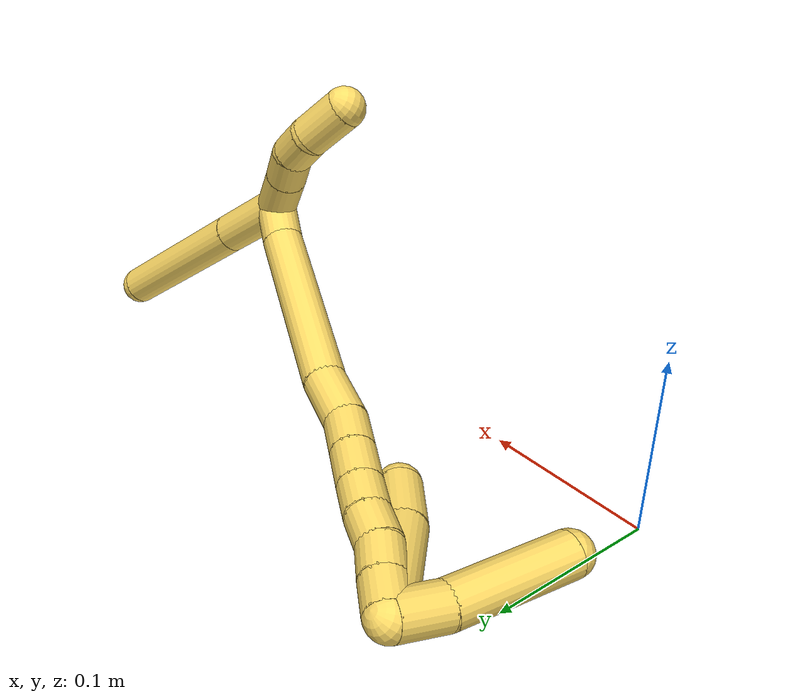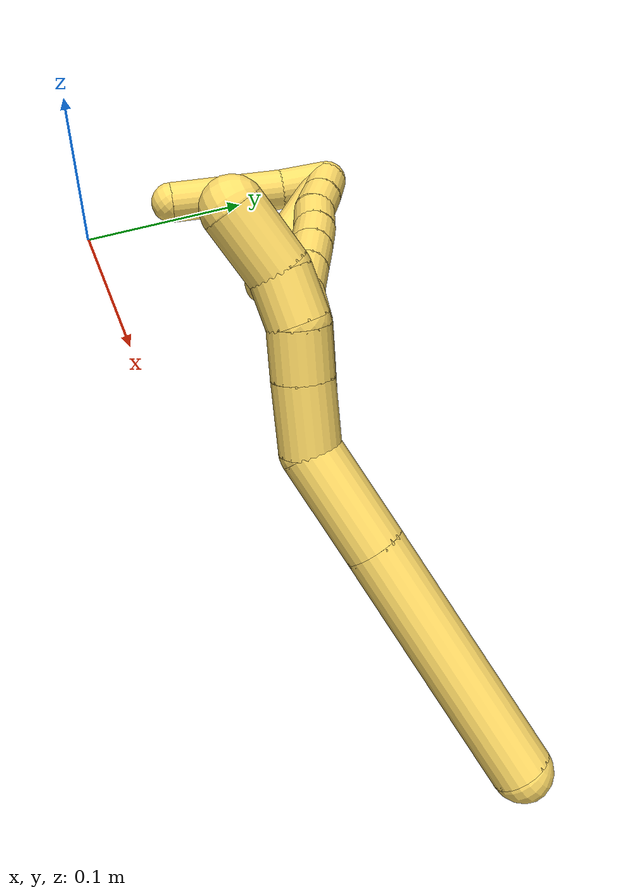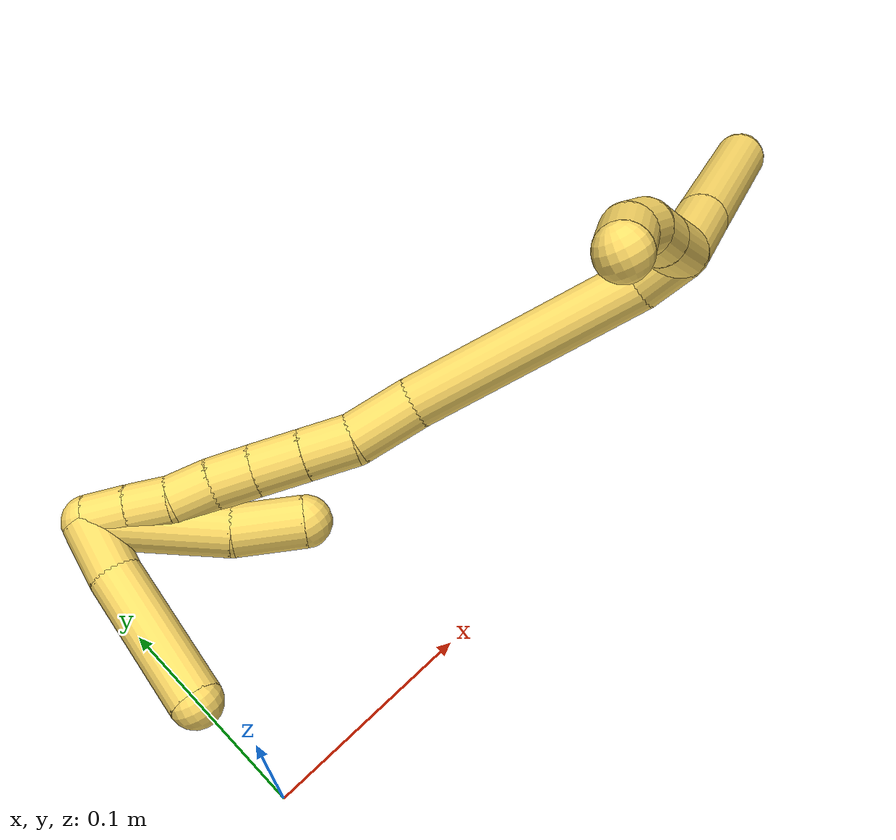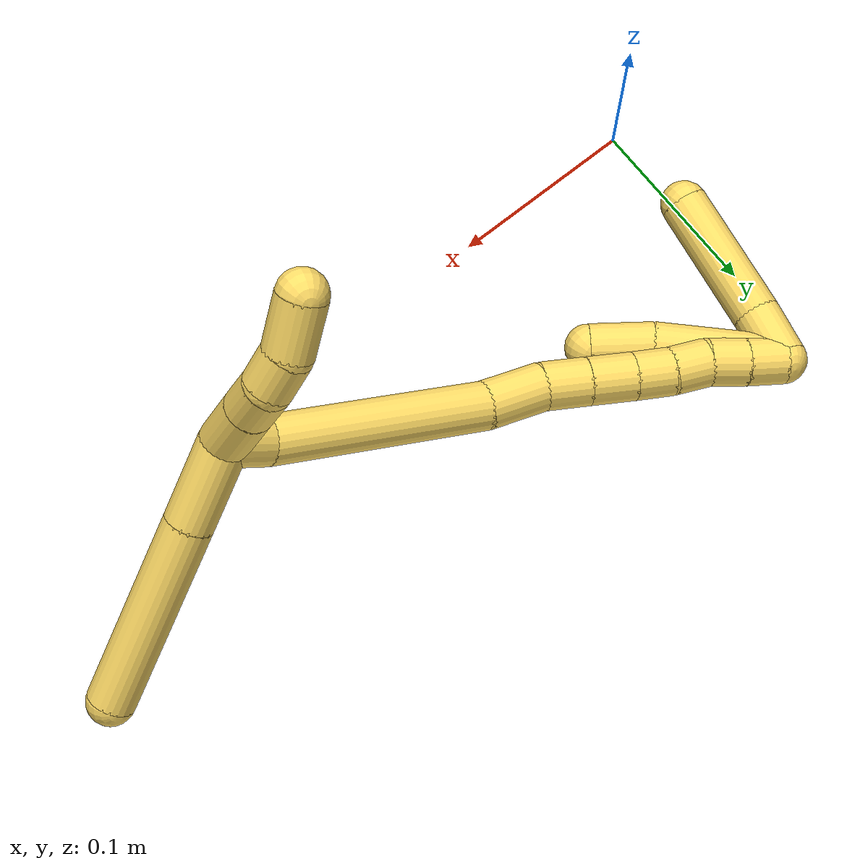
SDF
<sdf version="1.7">
 <world name="default">
  <model name="photoneo_s_sensor">
   <static>1</static>
   <pose>0 0 2 1.57079 1.57079 3.14159</pose>
   <link name="link">
    <inertial><mass>0.1</mass></inertial>
    <sensor name="sensor" type="depth">
     <update_rate>30</update_rate>
     <camera>
      <horizontal_fov>1.22</horizontal_fov>
      <image><width>1920</width><height>1200</height><format>B8G8R8</format></image>
      <clip><near>0.1</near><far>4</far></clip>
      <depth_camera><output>points</output></depth_camera>
     </camera>
     <plugin name="camera_plugin" filename="libgazebo_ros_depth_camera.so">
      <baseline>0.2</baseline>
      <alwaysOn>1</alwaysOn>
      <updateRate>0.0</updateRate>
      <cameraName>camera_ir</cameraName>
      <imageTopicName>/camera/color/image_raw</imageTopicName>
      <cameraInfoTopicName>/camera/color/camera_info</cameraInfoTopicName>
      <depthImageTopicName>/camera/depth/image_raw</depthImageTopicName>
      <depthImageCameraInfoTopicName>/camera/depth/camera_info</depthImageCameraInfoTopicName>
      <pointCloudTopicName>/camera/depth/points</pointCloudTopicName>
      <frameName>fr_optical</frameName>
      <pointCloudCutoff>0.1</pointCloudCutoff>
      <pointCloudCutoffMax>2.0</pointCloudCutoffMax>
      <distortionK1>0</distortionK1>
      <distortionK2>0</distortionK2>
      <distortionK3>0</distortionK3>
      <distortionT1>0</distortionT1>
      <distortionT2>0</distortionT2>
      <CxPrime>0</CxPrime>
      <Cx>0</Cx>
      <Cy>0</Cy>
      <focalLength>0</focalLength>
      <hackBaseline>0</hackBaseline>
     </plugin>
    </sensor>
   </link>
  </model>
  <model name="bin">
   <static>1</static>
   <link name="bottom">
    <collision name="collision-bottom">
     <pose>0 0 -0.01 0 -0 0</pose>
     <geometry><box><size>0.8 0.6 0.02</size></box></geometry>
     <surface>
      <friction><ode><mu>100</mu><mu2>100</mu2></ode></friction>
      <contact><collide_bitmask>65535</collide_bitmask></contact>
     </surface>
    </collision>
   </link>
   <link name="west_wall">
    <collision name="collision-west_wall">
     <pose>-0.41 0 0.1 0 -0 0</pose>
     <geometry><box><size>0.02 0.6 0.2</size></box></geometry>
     <surface>
      <friction><ode><mu>100</mu><mu2>100</mu2></ode></friction>
      <contact><collide_bitmask>65535</collide_bitmask></contact>
     </surface>
    </collision>
   </link>
   <link name="east_wall">
    <collision name="collision-east_wall">
     <pose>0.41 0 0.1 0 -0 0</pose>
     <geometry><box><size>0.02 0.6 0.2</size></box></geometry>
     <surface>
      <friction><ode><mu>100</mu><mu2>100</mu2></ode></friction>
      <contact><collide_bitmask>65535</collide_bitmask></contact>
     </surface>
    </collision>
   </link>
   <link name="south_wall">
    <collision name="collision-south_wall">
     <pose>0 -0.31 0.1 0 -0 0</pose>
     <geometry><box><size>0.8 0.02 0.2</size></box></geometry>
     <surface>
      <friction><ode><mu>100</mu><mu2>100</mu2></ode></friction>
      <contact><collide_bitmask>65535</collide_bitmask></contact>
     </surface>
    </collision>
   </link>
   <link name="north_wall">
    <collision name="collision-north_wall">
     <pose>0 0.31 0.1 0 -0 0</pose>
     <geometry><box><size>0.8 0.02 0.2</size></box></geometry>
     <surface>
      <friction><ode><mu>100</mu><mu2>100</mu2></ode></friction>
      <contact><collide_bitmask>65535</collide_bitmask></contact>
     </surface>
    </collision>
   </link>
  </model>
  <model name="5">
   <static>0</static>
   <link name="5">
    <collision name="collision-cylinder-e_1_2_8">
     <pose>0.015579 0.01635 -0.000684 -1.61264 0.760826 -0.790121</pose>
     <geometry><cylinder><radius>0.0125</radius><length>0.045187</length></cylinder></geometry>
     <surface>
      <friction><ode><mu>1.16</mu><mu2>1.16</mu2><slip1>0</slip1><slip2>0</slip2></ode></friction>
      <contact><ode><kp>1e+06</kp><kd>1</kd><max_vel>0</max_vel><min_depth>0.001</min_depth></ode></contact>
     </surface>
    </collision>
    <visual name="visual-cylinder-e_1_2_8">
     <pose>0.015579 0.01635 -0.000684 -1.61264 0.760826 -0.790121</pose>
     <geometry><cylinder><radius>0.0125</radius><length>0.045187</length></cylinder></geometry>
     <material><ambient>1 0.858824 0.4 1</ambient></material>
    </visual>
    <collision name="collision-cylinder-e_2_8_6">
     <pose>0.06731 0.070593 -0.00323 -1.61988 0.76128 -0.795758</pose>
     <geometry><cylinder><radius>0.0125</radius><length>0.104813</length></cylinder></geometry>
     <surface>
      <friction><ode><mu>1.16</mu><mu2>1.16</mu2><slip1>0</slip1><slip2>0</slip2></ode></friction>
      <contact><ode><kp>1e+06</kp><kd>1</kd><max_vel>0</max_vel><min_depth>0.001</min_depth></ode></contact>
     </surface>
    </collision>
    <visual name="visual-cylinder-e_2_8_6">
     <pose>0.06731 0.070593 -0.00323 -1.61988 0.76128 -0.795758</pose>
     <geometry><cylinder><radius>0.0125</radius><length>0.104813</length></cylinder></geometry>
     <material><ambient>1 0.858824 0.4 1</ambient></material>
    </visual>
    <collision name="collision-cylinder-e_1_2_9">
     <pose>-0.00776 -0.009996 0.007914 0.901083 -0.546775 -0.269635</pose>
     <geometry><cylinder><radius>0.0125</radius><length>0.029851</length></cylinder></geometry>
     <surface>
      <friction><ode><mu>1.16</mu><mu2>1.16</mu2><slip1>0</slip1><slip2>0</slip2></ode></friction>
      <contact><ode><kp>1e+06</kp><kd>1</kd><max_vel>0</max_vel><min_depth>0.001</min_depth></ode></contact>
     </surface>
    </collision>
    <visual name="visual-cylinder-e_1_2_9">
     <pose>-0.00776 -0.009996 0.007914 0.901083 -0.546775 -0.269635</pose>
     <geometry><cylinder><radius>0.0125</radius><length>0.029851</length></cylinder></geometry>
     <material><ambient>1 0.858824 0.4 1</ambient></material>
    </visual>
    <collision name="collision-cylinder-e_2_9_10">
     <pose>-0.02081 -0.026942 0.021623 0.875938 -0.528949 -0.252303</pose>
     <geometry><cylinder><radius>0.0125</radius><length>0.020963</length></cylinder></geometry>
     <surface>
      <friction><ode><mu>1.16</mu><mu2>1.16</mu2><slip1>0</slip1><slip2>0</slip2></ode></friction>
      <contact><ode><kp>1e+06</kp><kd>1</kd><max_vel>0</max_vel><min_depth>0.001</min_depth></ode></contact>
     </surface>
    </collision>
    <visual name="visual-cylinder-e_2_9_10">
     <pose>-0.02081 -0.026942 0.021623 0.875938 -0.528949 -0.252303</pose>
     <geometry><cylinder><radius>0.0125</radius><length>0.020963</length></cylinder></geometry>
     <material><ambient>1 0.858824 0.4 1</ambient></material>
    </visual>
    <collision name="collision-cylinder-e_3_10_11">
     <pose>-0.032897 -0.040905 0.030129 1.20176 -0.735147 -0.516112</pose>
     <geometry><cylinder><radius>0.0125</radius><length>0.020272</length></cylinder></geometry>
     <surface>
      <friction><ode><mu>1.16</mu><mu2>1.16</mu2><slip1>0</slip1><slip2>0</slip2></ode></friction>
      <contact><ode><kp>1e+06</kp><kd>1</kd><max_vel>0</max_vel><min_depth>0.001</min_depth></ode></contact>
     </surface>
    </collision>
    <visual name="visual-cylinder-e_3_10_11">
     <pose>-0.032897 -0.040905 0.030129 1.20176 -0.735147 -0.516112</pose>
     <geometry><cylinder><radius>0.0125</radius><length>0.020272</length></cylinder></geometry>
     <material><ambient>1 0.858824 0.4 1</ambient></material>
    </visual>
    <collision name="collision-cylinder-e_4_11_5">
     <pose>-0.047645 -0.059983 0.033321 1.53096 -0.582235 -0.560685</pose>
     <geometry><cylinder><radius>0.0125</radius><length>0.028914</length></cylinder></geometry>
     <surface>
      <friction><ode><mu>1.16</mu><mu2>1.16</mu2><slip1>0</slip1><slip2>0</slip2></ode></friction>
      <contact><ode><kp>1e+06</kp><kd>1</kd><max_vel>0</max_vel><min_depth>0.001</min_depth></ode></contact>
     </surface>
    </collision>
    <visual name="visual-cylinder-e_4_11_5">
     <pose>-0.047645 -0.059983 0.033321 1.53096 -0.582235 -0.560685</pose>
     <geometry><cylinder><radius>0.0125</radius><length>0.028914</length></cylinder></geometry>
     <material><ambient>1 0.858824 0.4 1</ambient></material>
    </visual>
    <collision name="collision-cylinder-e_1_2_12">
     <pose>-0.009268 0.007295 -0.003183 -1.98219 -0.861246 1.22361</pose>
     <geometry><cylinder><radius>0.0125</radius><length>0.024432</length></cylinder></geometry>
     <surface>
      <friction><ode><mu>1.16</mu><mu2>1.16</mu2><slip1>0</slip1><slip2>0</slip2></ode></friction>
      <contact><ode><kp>1e+06</kp><kd>1</kd><max_vel>0</max_vel><min_depth>0.001</min_depth></ode></contact>
     </surface>
    </collision>
    <visual name="visual-cylinder-e_1_2_12">
     <pose>-0.009268 0.007295 -0.003183 -1.98219 -0.861246 1.22361</pose>
     <geometry><cylinder><radius>0.0125</radius><length>0.024432</length></cylinder></geometry>
     <material><ambient>1 0.858824 0.4 1</ambient></material>
    </visual>
    <collision name="collision-cylinder-e_2_12_13">
     <pose>-0.071365 0.037115 -0.009261 -1.69866 -1.16479 1.28533</pose>
     <geometry><cylinder><radius>0.0125</radius><length>0.115009</length></cylinder></geometry>
     <surface>
      <friction><ode><mu>1.16</mu><mu2>1.16</mu2><slip1>0</slip1><slip2>0</slip2></ode></friction>
      <contact><ode><kp>1e+06</kp><kd>1</kd><max_vel>0</max_vel><min_depth>0.001</min_depth></ode></contact>
     </surface>
    </collision>
    <visual name="visual-cylinder-e_2_12_13">
     <pose>-0.071365 0.037115 -0.009261 -1.69866 -1.16479 1.28533</pose>
     <geometry><cylinder><radius>0.0125</radius><length>0.115009</length></cylinder></geometry>
     <material><ambient>1 0.858824 0.4 1</ambient></material>
    </visual>
    <collision name="collision-cylinder-e_3_13_14">
     <pose>-0.139776 0.063337 -0.013185 -1.84193 -1.32937 1.6015</pose>
     <geometry><cylinder><radius>0.0125</radius><length>0.032092</length></cylinder></geometry>
     <surface>
      <friction><ode><mu>1.16</mu><mu2>1.16</mu2><slip1>0</slip1><slip2>0</slip2></ode></friction>
      <contact><ode><kp>1e+06</kp><kd>1</kd><max_vel>0</max_vel><min_depth>0.001</min_depth></ode></contact>
     </surface>
    </collision>
    <visual name="visual-cylinder-e_3_13_14">
     <pose>-0.139776 0.063337 -0.013185 -1.84193 -1.32937 1.6015</pose>
     <geometry><cylinder><radius>0.0125</radius><length>0.032092</length></cylinder></geometry>
     <material><ambient>1 0.858824 0.4 1</ambient></material>
    </visual>
    <collision name="collision-cylinder-e_4_14_15">
     <pose>-0.166564 0.070765 -0.012272 -1.09145 -1.21174 0.79643</pose>
     <geometry><cylinder><radius>0.0125</radius><length>0.023942</length></cylinder></geometry>
     <surface>
      <friction><ode><mu>1.16</mu><mu2>1.16</mu2><slip1>0</slip1><slip2>0</slip2></ode></friction>
      <contact><ode><kp>1e+06</kp><kd>1</kd><max_vel>0</max_vel><min_depth>0.001</min_depth></ode></contact>
     </surface>
    </collision>
    <visual name="visual-cylinder-e_4_14_15">
     <pose>-0.166564 0.070765 -0.012272 -1.09145 -1.21174 0.79643</pose>
     <geometry><cylinder><radius>0.0125</radius><length>0.023942</length></cylinder></geometry>
     <material><ambient>1 0.858824 0.4 1</ambient></material>
    </visual>
    <collision name="collision-cylinder-e_5_15_16">
     <pose>-0.188924 0.078307 -0.008423 -1.10621 -1.20586 0.803805</pose>
     <geometry><cylinder><radius>0.0125</radius><length>0.023875</length></cylinder></geometry>
     <surface>
      <friction><ode><mu>1.16</mu><mu2>1.16</mu2><slip1>0</slip1><slip2>0</slip2></ode></friction>
      <contact><ode><kp>1e+06</kp><kd>1</kd><max_vel>0</max_vel><min_depth>0.001</min_depth></ode></contact>
     </surface>
    </collision>
    <visual name="visual-cylinder-e_5_15_16">
     <pose>-0.188924 0.078307 -0.008423 -1.10621 -1.20586 0.803805</pose>
     <geometry><cylinder><radius>0.0125</radius><length>0.023875</length></cylinder></geometry>
     <material><ambient>1 0.858824 0.4 1</ambient></material>
    </visual>
    <collision name="collision-cylinder-e_6_16_17">
     <pose>-0.209582 0.085143 -0.004939 -1.09116 -1.22612 0.807194</pose>
     <geometry><cylinder><radius>0.0125</radius><length>0.020201</length></cylinder></geometry>
     <surface>
      <friction><ode><mu>1.16</mu><mu2>1.16</mu2><slip1>0</slip1><slip2>0</slip2></ode></friction>
      <contact><ode><kp>1e+06</kp><kd>1</kd><max_vel>0</max_vel><min_depth>0.001</min_depth></ode></contact>
     </surface>
    </collision>
    <visual name="visual-cylinder-e_6_16_17">
     <pose>-0.209582 0.085143 -0.004939 -1.09116 -1.22612 0.807194</pose>
     <geometry><cylinder><radius>0.0125</radius><length>0.020201</length></cylinder></geometry>
     <material><ambient>1 0.858824 0.4 1</ambient></material>
    </visual>
    <collision name="collision-cylinder-e_7_17_18">
     <pose>-0.2288 0.090435 -0.002601 -1.24553 -1.32958 1.0253</pose>
     <geometry><cylinder><radius>0.0125</radius><length>0.020004</length></cylinder></geometry>
     <surface>
      <friction><ode><mu>1.16</mu><mu2>1.16</mu2><slip1>0</slip1><slip2>0</slip2></ode></friction>
      <contact><ode><kp>1e+06</kp><kd>1</kd><max_vel>0</max_vel><min_depth>0.001</min_depth></ode></contact>
     </surface>
    </collision>
    <visual name="visual-cylinder-e_7_17_18">
     <pose>-0.2288 0.090435 -0.002601 -1.24553 -1.32958 1.0253</pose>
     <geometry><cylinder><radius>0.0125</radius><length>0.020004</length></cylinder></geometry>
     <material><ambient>1 0.858824 0.4 1</ambient></material>
    </visual>
    <collision name="collision-cylinder-e_8_18_19">
     <pose>-0.247575 0.096524 0.000519 -1.01864 -1.11062 0.667095</pose>
     <geometry><cylinder><radius>0.0125</radius><length>0.020229</length></cylinder></geometry>
     <surface>
      <friction><ode><mu>1.16</mu><mu2>1.16</mu2><slip1>0</slip1><slip2>0</slip2></ode></friction>
      <contact><ode><kp>1e+06</kp><kd>1</kd><max_vel>0</max_vel><min_depth>0.001</min_depth></ode></contact>
     </surface>
    </collision>
    <visual name="visual-cylinder-e_8_18_19">
     <pose>-0.247575 0.096524 0.000519 -1.01864 -1.11062 0.667095</pose>
     <geometry><cylinder><radius>0.0125</radius><length>0.020229</length></cylinder></geometry>
     <material><ambient>1 0.858824 0.4 1</ambient></material>
    </visual>
    <collision name="collision-cylinder-e_9_19_1">
     <pose>-0.265895 0.103795 0.005014 -1.0153 -1.15777 0.697424</pose>
     <geometry><cylinder><radius>0.0125</radius><length>0.020215</length></cylinder></geometry>
     <surface>
      <friction><ode><mu>1.16</mu><mu2>1.16</mu2><slip1>0</slip1><slip2>0</slip2></ode></friction>
      <contact><ode><kp>1e+06</kp><kd>1</kd><max_vel>0</max_vel><min_depth>0.001</min_depth></ode></contact>
     </surface>
    </collision>
    <visual name="visual-cylinder-e_9_19_1">
     <pose>-0.265895 0.103795 0.005014 -1.0153 -1.15777 0.697424</pose>
     <geometry><cylinder><radius>0.0125</radius><length>0.020215</length></cylinder></geometry>
     <material><ambient>1 0.858824 0.4 1</ambient></material>
    </visual>
    <collision name="collision-cylinder-e_1_1_20">
     <pose>-0.248685 0.096793 -0.009823 2.58987 0.925261 2.10908</pose>
     <geometry><cylinder><radius>0.0125</radius><length>0.066269</length></cylinder></geometry>
     <surface>
      <friction><ode><mu>1.16</mu><mu2>1.16</mu2><slip1>0</slip1><slip2>0</slip2></ode></friction>
      <contact><ode><kp>1e+06</kp><kd>1</kd><max_vel>0</max_vel><min_depth>0.001</min_depth></ode></contact>
     </surface>
    </collision>
    <visual name="visual-cylinder-e_1_1_20">
     <pose>-0.248685 0.096793 -0.009823 2.58987 0.925261 2.10908</pose>
     <geometry><cylinder><radius>0.0125</radius><length>0.066269</length></cylinder></geometry>
     <material><ambient>1 0.858824 0.4 1</ambient></material>
    </visual>
    <collision name="collision-cylinder-e_2_20_4">
     <pose>-0.207126 0.081567 -0.032616 2.45395 1.10816 2.09241</pose>
     <geometry><cylinder><radius>0.0125</radius><length>0.033731</length></cylinder></geometry>
     <surface>
      <friction><ode><mu>1.16</mu><mu2>1.16</mu2><slip1>0</slip1><slip2>0</slip2></ode></friction>
      <contact><ode><kp>1e+06</kp><kd>1</kd><max_vel>0</max_vel><min_depth>0.001</min_depth></ode></contact>
     </surface>
    </collision>
    <visual name="visual-cylinder-e_2_20_4">
     <pose>-0.207126 0.081567 -0.032616 2.45395 1.10816 2.09241</pose>
     <geometry><cylinder><radius>0.0125</radius><length>0.033731</length></cylinder></geometry>
     <material><ambient>1 0.858824 0.4 1</ambient></material>
    </visual>
    <collision name="collision-cylinder-e_1_1_21">
     <pose>-0.276303 0.099924 -0.005169 2.60569 -0.080115 -0.289909</pose>
     <geometry><cylinder><radius>0.0125</radius><length>0.028755</length></cylinder></geometry>
     <surface>
      <friction><ode><mu>1.16</mu><mu2>1.16</mu2><slip1>0</slip1><slip2>0</slip2></ode></friction>
      <contact><ode><kp>1e+06</kp><kd>1</kd><max_vel>0</max_vel><min_depth>0.001</min_depth></ode></contact>
     </surface>
    </collision>
    <visual name="visual-cylinder-e_1_1_21">
     <pose>-0.276303 0.099924 -0.005169 2.60569 -0.080115 -0.289909</pose>
     <geometry><cylinder><radius>0.0125</radius><length>0.028755</length></cylinder></geometry>
     <material><ambient>1 0.858824 0.4 1</ambient></material>
    </visual>
    <collision name="collision-cylinder-e_2_21_3">
     <pose>-0.276809 0.069882 -0.044916 2.44968 0.018092 0.050183</pose>
     <geometry><cylinder><radius>0.0125</radius><length>0.071245</length></cylinder></geometry>
     <surface>
      <friction><ode><mu>1.16</mu><mu2>1.16</mu2><slip1>0</slip1><slip2>0</slip2></ode></friction>
      <contact><ode><kp>1e+06</kp><kd>1</kd><max_vel>0</max_vel><min_depth>0.001</min_depth></ode></contact>
     </surface>
    </collision>
    <visual name="visual-cylinder-e_2_21_3">
     <pose>-0.276809 0.069882 -0.044916 2.44968 0.018092 0.050183</pose>
     <geometry><cylinder><radius>0.0125</radius><length>0.071245</length></cylinder></geometry>
     <material><ambient>1 0.858824 0.4 1</ambient></material>
    </visual>
    <collision name="collision-sphere-3">
     <pose>-0.276165 0.047158 -0.072342 0 -0 0</pose>
     <geometry><sphere><radius>0.0125</radius></sphere></geometry>
     <surface>
      <friction><ode><mu>1.16</mu><mu2>1.16</mu2><slip1>0</slip1><slip2>0</slip2></ode></friction>
      <contact><ode><kp>1e+06</kp><kd>1</kd><max_vel>0</max_vel><min_depth>0.001</min_depth></ode></contact>
     </surface>
    </collision>
    <visual name="visual-sphere-3">
     <pose>-0.276165 0.047158 -0.072342 0 -0 0</pose>
     <geometry><sphere><radius>0.0125</radius></sphere></geometry>
     <material><ambient>1 0.858824 0.4 1</ambient></material>
    </visual>
    <collision name="collision-sphere-21">
     <pose>-0.277454 0.092606 -0.017491 0 -0 0</pose>
     <geometry><sphere><radius>0.0125</radius></sphere></geometry>
     <surface>
      <friction><ode><mu>1.16</mu><mu2>1.16</mu2><slip1>0</slip1><slip2>0</slip2></ode></friction>
      <contact><ode><kp>1e+06</kp><kd>1</kd><max_vel>0</max_vel><min_depth>0.001</min_depth></ode></contact>
     </surface>
    </collision>
    <visual name="visual-sphere-21">
     <pose>-0.277454 0.092606 -0.017491 0 -0 0</pose>
     <geometry><sphere><radius>0.0125</radius></sphere></geometry>
     <material><ambient>1 0.858824 0.4 1</ambient></material>
    </visual>
    <collision name="collision-sphere-4">
     <pose>-0.192033 0.076789 -0.038433 0 -0 0</pose>
     <geometry><sphere><radius>0.0125</radius></sphere></geometry>
     <surface>
      <friction><ode><mu>1.16</mu><mu2>1.16</mu2><slip1>0</slip1><slip2>0</slip2></ode></friction>
      <contact><ode><kp>1e+06</kp><kd>1</kd><max_vel>0</max_vel><min_depth>0.001</min_depth></ode></contact>
     </surface>
    </collision>
    <visual name="visual-sphere-4">
     <pose>-0.192033 0.076789 -0.038433 0 -0 0</pose>
     <geometry><sphere><radius>0.0125</radius></sphere></geometry>
     <material><ambient>1 0.858824 0.4 1</ambient></material>
    </visual>
    <collision name="collision-sphere-20">
     <pose>-0.222218 0.086344 -0.0268 0 -0 0</pose>
     <geometry><sphere><radius>0.0125</radius></sphere></geometry>
     <surface>
      <friction><ode><mu>1.16</mu><mu2>1.16</mu2><slip1>0</slip1><slip2>0</slip2></ode></friction>
      <contact><ode><kp>1e+06</kp><kd>1</kd><max_vel>0</max_vel><min_depth>0.001</min_depth></ode></contact>
     </surface>
    </collision>
    <visual name="visual-sphere-20">
     <pose>-0.222218 0.086344 -0.0268 0 -0 0</pose>
     <geometry><sphere><radius>0.0125</radius></sphere></geometry>
     <material><ambient>1 0.858824 0.4 1</ambient></material>
    </visual>
    <collision name="collision-sphere-11">
     <pose>-0.039695 -0.047917 0.03284 0 -0 0</pose>
     <geometry><sphere><radius>0.0125</radius></sphere></geometry>
     <surface>
      <friction><ode><mu>1.16</mu><mu2>1.16</mu2><slip1>0</slip1><slip2>0</slip2></ode></friction>
      <contact><ode><kp>1e+06</kp><kd>1</kd><max_vel>0</max_vel><min_depth>0.001</min_depth></ode></contact>
     </surface>
    </collision>
    <visual name="visual-sphere-11">
     <pose>-0.039695 -0.047917 0.03284 0 -0 0</pose>
     <geometry><sphere><radius>0.0125</radius></sphere></geometry>
     <material><ambient>1 0.858824 0.4 1</ambient></material>
    </visual>
    <collision name="collision-sphere-10">
     <pose>-0.026099 -0.033893 0.027417 0 -0 0</pose>
     <geometry><sphere><radius>0.0125</radius></sphere></geometry>
     <surface>
      <friction><ode><mu>1.16</mu><mu2>1.16</mu2><slip1>0</slip1><slip2>0</slip2></ode></friction>
      <contact><ode><kp>1e+06</kp><kd>1</kd><max_vel>0</max_vel><min_depth>0.001</min_depth></ode></contact>
     </surface>
    </collision>
    <visual name="visual-sphere-10">
     <pose>-0.026099 -0.033893 0.027417 0 -0 0</pose>
     <geometry><sphere><radius>0.0125</radius></sphere></geometry>
     <material><ambient>1 0.858824 0.4 1</ambient></material>
    </visual>
    <collision name="collision-sphere-6">
     <pose>0.103462 0.108487 -0.005092 0 -0 0</pose>
     <geometry><sphere><radius>0.0125</radius></sphere></geometry>
     <surface>
      <friction><ode><mu>1.16</mu><mu2>1.16</mu2><slip1>0</slip1><slip2>0</slip2></ode></friction>
      <contact><ode><kp>1e+06</kp><kd>1</kd><max_vel>0</max_vel><min_depth>0.001</min_depth></ode></contact>
     </surface>
    </collision>
    <visual name="visual-sphere-6">
     <pose>0.103462 0.108487 -0.005092 0 -0 0</pose>
     <geometry><sphere><radius>0.0125</radius></sphere></geometry>
     <material><ambient>1 0.858824 0.4 1</ambient></material>
    </visual>
    <collision name="collision-sphere-9">
     <pose>-0.015521 -0.019991 0.015829 0 -0 0</pose>
     <geometry><sphere><radius>0.0125</radius></sphere></geometry>
     <surface>
      <friction><ode><mu>1.16</mu><mu2>1.16</mu2><slip1>0</slip1><slip2>0</slip2></ode></friction>
      <contact><ode><kp>1e+06</kp><kd>1</kd><max_vel>0</max_vel><min_depth>0.001</min_depth></ode></contact>
     </surface>
    </collision>
    <visual name="visual-sphere-9">
     <pose>-0.015521 -0.019991 0.015829 0 -0 0</pose>
     <geometry><sphere><radius>0.0125</radius></sphere></geometry>
     <material><ambient>1 0.858824 0.4 1</ambient></material>
    </visual>
    <collision name="collision-sphere-2">
     <geometry><sphere><radius>0.0125</radius></sphere></geometry>
     <surface>
      <friction><ode><mu>1.16</mu><mu2>1.16</mu2><slip1>0</slip1><slip2>0</slip2></ode></friction>
      <contact><ode><kp>1e+06</kp><kd>1</kd><max_vel>0</max_vel><min_depth>0.001</min_depth></ode></contact>
     </surface>
    </collision>
    <visual name="visual-sphere-2">
     <geometry><sphere><radius>0.0125</radius></sphere></geometry>
     <material><ambient>1 0.858824 0.4 1</ambient></material>
    </visual>
    <collision name="collision-sphere-19">
     <pose>-0.256638 0.100348 0.002875 0 -0 0</pose>
     <geometry><sphere><radius>0.0125</radius></sphere></geometry>
     <surface>
      <friction><ode><mu>1.16</mu><mu2>1.16</mu2><slip1>0</slip1><slip2>0</slip2></ode></friction>
      <contact><ode><kp>1e+06</kp><kd>1</kd><max_vel>0</max_vel><min_depth>0.001</min_depth></ode></contact>
     </surface>
    </collision>
    <visual name="visual-sphere-19">
     <pose>-0.256638 0.100348 0.002875 0 -0 0</pose>
     <geometry><sphere><radius>0.0125</radius></sphere></geometry>
     <material><ambient>1 0.858824 0.4 1</ambient></material>
    </visual>
    <collision name="collision-sphere-8">
     <pose>0.031158 0.032699 -0.001369 0 -0 0</pose>
     <geometry><sphere><radius>0.0125</radius></sphere></geometry>
     <surface>
      <friction><ode><mu>1.16</mu><mu2>1.16</mu2><slip1>0</slip1><slip2>0</slip2></ode></friction>
      <contact><ode><kp>1e+06</kp><kd>1</kd><max_vel>0</max_vel><min_depth>0.001</min_depth></ode></contact>
     </surface>
    </collision>
    <visual name="visual-sphere-8">
     <pose>0.031158 0.032699 -0.001369 0 -0 0</pose>
     <geometry><sphere><radius>0.0125</radius></sphere></geometry>
     <material><ambient>1 0.858824 0.4 1</ambient></material>
    </visual>
    <collision name="collision-sphere-5">
     <pose>-0.055595 -0.072048 0.033802 0 -0 0</pose>
     <geometry><sphere><radius>0.0125</radius></sphere></geometry>
     <surface>
      <friction><ode><mu>1.16</mu><mu2>1.16</mu2><slip1>0</slip1><slip2>0</slip2></ode></friction>
      <contact><ode><kp>1e+06</kp><kd>1</kd><max_vel>0</max_vel><min_depth>0.001</min_depth></ode></contact>
     </surface>
    </collision>
    <visual name="visual-sphere-5">
     <pose>-0.055595 -0.072048 0.033802 0 -0 0</pose>
     <geometry><sphere><radius>0.0125</radius></sphere></geometry>
     <material><ambient>1 0.858824 0.4 1</ambient></material>
    </visual>
    <collision name="collision-sphere-12">
     <pose>-0.018535 0.014589 -0.006365 0 -0 0</pose>
     <geometry><sphere><radius>0.0125</radius></sphere></geometry>
     <surface>
      <friction><ode><mu>1.16</mu><mu2>1.16</mu2><slip1>0</slip1><slip2>0</slip2></ode></friction>
      <contact><ode><kp>1e+06</kp><kd>1</kd><max_vel>0</max_vel><min_depth>0.001</min_depth></ode></contact>
     </surface>
    </collision>
    <visual name="visual-sphere-12">
     <pose>-0.018535 0.014589 -0.006365 0 -0 0</pose>
     <geometry><sphere><radius>0.0125</radius></sphere></geometry>
     <material><ambient>1 0.858824 0.4 1</ambient></material>
    </visual>
    <collision name="collision-sphere-13">
     <pose>-0.124195 0.05964 -0.012157 0 -0 0</pose>
     <geometry><sphere><radius>0.0125</radius></sphere></geometry>
     <surface>
      <friction><ode><mu>1.16</mu><mu2>1.16</mu2><slip1>0</slip1><slip2>0</slip2></ode></friction>
      <contact><ode><kp>1e+06</kp><kd>1</kd><max_vel>0</max_vel><min_depth>0.001</min_depth></ode></contact>
     </surface>
    </collision>
    <visual name="visual-sphere-13">
     <pose>-0.124195 0.05964 -0.012157 0 -0 0</pose>
     <geometry><sphere><radius>0.0125</radius></sphere></geometry>
     <material><ambient>1 0.858824 0.4 1</ambient></material>
    </visual>
    <collision name="collision-sphere-14">
     <pose>-0.155357 0.067033 -0.014212 0 -0 0</pose>
     <geometry><sphere><radius>0.0125</radius></sphere></geometry>
     <surface>
      <friction><ode><mu>1.16</mu><mu2>1.16</mu2><slip1>0</slip1><slip2>0</slip2></ode></friction>
      <contact><ode><kp>1e+06</kp><kd>1</kd><max_vel>0</max_vel><min_depth>0.001</min_depth></ode></contact>
     </surface>
    </collision>
    <visual name="visual-sphere-14">
     <pose>-0.155357 0.067033 -0.014212 0 -0 0</pose>
     <geometry><sphere><radius>0.0125</radius></sphere></geometry>
     <material><ambient>1 0.858824 0.4 1</ambient></material>
    </visual>
    <collision name="collision-sphere-15">
     <pose>-0.177772 0.074498 -0.010332 0 -0 0</pose>
     <geometry><sphere><radius>0.0125</radius></sphere></geometry>
     <surface>
      <friction><ode><mu>1.16</mu><mu2>1.16</mu2><slip1>0</slip1><slip2>0</slip2></ode></friction>
      <contact><ode><kp>1e+06</kp><kd>1</kd><max_vel>0</max_vel><min_depth>0.001</min_depth></ode></contact>
     </surface>
    </collision>
    <visual name="visual-sphere-15">
     <pose>-0.177772 0.074498 -0.010332 0 -0 0</pose>
     <geometry><sphere><radius>0.0125</radius></sphere></geometry>
     <material><ambient>1 0.858824 0.4 1</ambient></material>
    </visual>
    <collision name="collision-sphere-16">
     <pose>-0.200075 0.082116 -0.006514 0 -0 0</pose>
     <geometry><sphere><radius>0.0125</radius></sphere></geometry>
     <surface>
      <friction><ode><mu>1.16</mu><mu2>1.16</mu2><slip1>0</slip1><slip2>0</slip2></ode></friction>
      <contact><ode><kp>1e+06</kp><kd>1</kd><max_vel>0</max_vel><min_depth>0.001</min_depth></ode></contact>
     </surface>
    </collision>
    <visual name="visual-sphere-16">
     <pose>-0.200075 0.082116 -0.006514 0 -0 0</pose>
     <geometry><sphere><radius>0.0125</radius></sphere></geometry>
     <material><ambient>1 0.858824 0.4 1</ambient></material>
    </visual>
    <collision name="collision-sphere-17">
     <pose>-0.219088 0.088171 -0.003364 0 -0 0</pose>
     <geometry><sphere><radius>0.0125</radius></sphere></geometry>
     <surface>
      <friction><ode><mu>1.16</mu><mu2>1.16</mu2><slip1>0</slip1><slip2>0</slip2></ode></friction>
      <contact><ode><kp>1e+06</kp><kd>1</kd><max_vel>0</max_vel><min_depth>0.001</min_depth></ode></contact>
     </surface>
    </collision>
    <visual name="visual-sphere-17">
     <pose>-0.219088 0.088171 -0.003364 0 -0 0</pose>
     <geometry><sphere><radius>0.0125</radius></sphere></geometry>
     <material><ambient>1 0.858824 0.4 1</ambient></material>
    </visual>
    <collision name="collision-sphere-18">
     <pose>-0.238513 0.092699 -0.001837 0 -0 0</pose>
     <geometry><sphere><radius>0.0125</radius></sphere></geometry>
     <surface>
      <friction><ode><mu>1.16</mu><mu2>1.16</mu2><slip1>0</slip1><slip2>0</slip2></ode></friction>
      <contact><ode><kp>1e+06</kp><kd>1</kd><max_vel>0</max_vel><min_depth>0.001</min_depth></ode></contact>
     </surface>
    </collision>
    <visual name="visual-sphere-18">
     <pose>-0.238513 0.092699 -0.001837 0 -0 0</pose>
     <geometry><sphere><radius>0.0125</radius></sphere></geometry>
     <material><ambient>1 0.858824 0.4 1</ambient></material>
    </visual>
    <collision name="collision-sphere-1">
     <pose>-0.275153 0.107242 0.007154 0 -0 0</pose>
     <geometry><sphere><radius>0.0125</radius></sphere></geometry>
     <surface>
      <friction><ode><mu>1.16</mu><mu2>1.16</mu2><slip1>0</slip1><slip2>0</slip2></ode></friction>
      <contact><ode><kp>1e+06</kp><kd>1</kd><max_vel>0</max_vel><min_depth>0.001</min_depth></ode></contact>
     </surface>
    </collision>
    <visual name="visual-sphere-1">
     <pose>-0.275153 0.107242 0.007154 0 -0 0</pose>
     <geometry><sphere><radius>0.0125</radius></sphere></geometry>
     <material><ambient>1 0.858824 0.4 1</ambient></material>
    </visual>
    <inertial>
     <pose>-0.115598 0.052469 -0.007075 0 -0 0</pose>
     <mass>0.75</mass>
     <inertia>
      <ixx>0.000107</ixx>
      <ixy>0</ixy>
      <ixz>0</ixz>
      <iyy>0.000193</iyy>
      <iyz>0</iyz>
      <izz>-6.4e-05</izz>
     </inertia>
    </inertial>
   </link>
   <pose>0.274942 0.035375 0.098049 -0.890872 -0.009469 -0.168644</pose>
  </model>
 </world>
</sdf>
